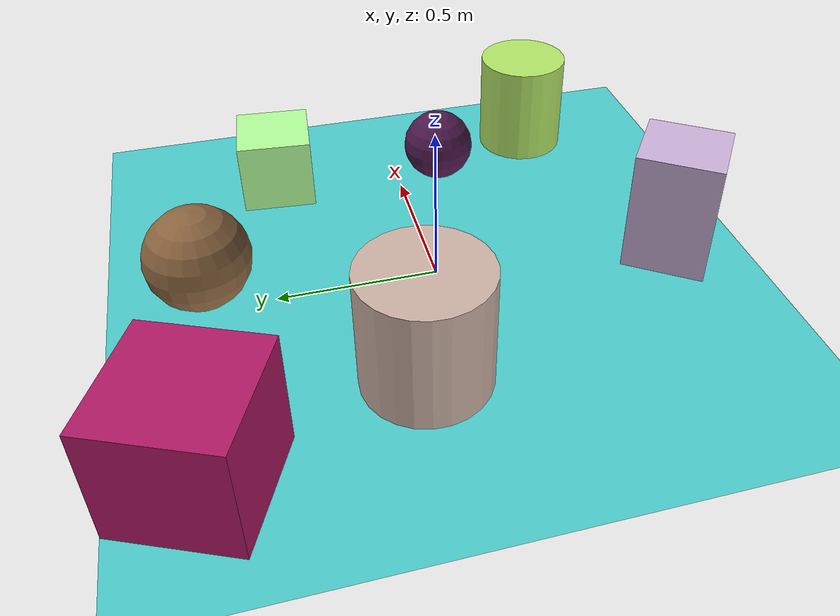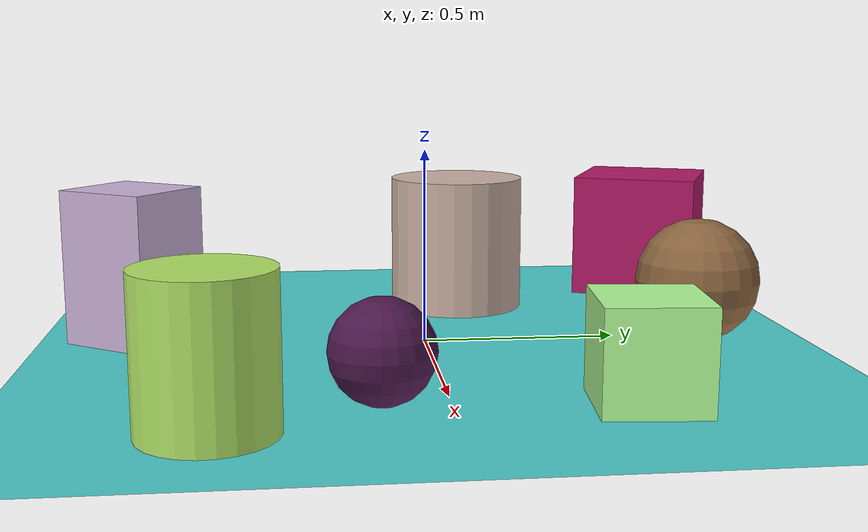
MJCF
<mujoco>
   <asset>
<texture type="skybox" builtin="gradient" rgb1="0.2 0.5 0.7" rgb2="0.3 0.0 0.1" width="256" height="256"/>
<texture name="gradient_0" builtin="gradient" rgb1="0.7 0.4 0.0" rgb2="0.4 0.4 0.5" width="200" height="200"/>
<texture name="gradient_1" builtin="gradient" rgb1="0.9 1.0 0.6" rgb2="0.7 0.4 0.7" width="200" height="200"/>
<texture name="flat_2" builtin="flat" rgb1="0.3 0.1 0.3" rgb2="0.3 0.1 0.3"  width="200" height="200"/>
<texture name="checker_3" builtin="checker" rgb1="0.6 0.1 0.3" rgb2="0.8 0.1 0.5" width="200" height="200"/>
<texture name="flat_4" builtin="flat" rgb1="0.7 1.0 0.6" rgb2="0.7 1.0 0.6"  width="200" height="200"/>
<texture name="flat_5" builtin="flat" rgb1="0.7 0.9 0.4" rgb2="0.7 0.9 0.4"  width="200" height="200"/>
<texture name="gradient_6" builtin="gradient" rgb1="0.7 0.8 0.8" rgb2="0.9 0.6 0.9" width="200" height="200"/><material name="gradient_0_mat" reflectance="0" texture="gradient_0" texuniform="true"/>
<material name="gradient_1_mat" reflectance="0" texture="gradient_1" texuniform="true"/>
<material name="flat_2_mat" reflectance="0" texture="flat_2" texuniform="true"/>
<material name="checker_3_mat" reflectance="0" texrepeat="5 5" texture="checker_3" texuniform="false" />
<material name="flat_4_mat" reflectance="0" texture="flat_4" texuniform="true"/>
<material name="flat_5_mat" reflectance="0" texture="flat_5" texuniform="true"/>
<material name="gradient_6_mat" reflectance="0" texture="gradient_6" texuniform="true"/>
   </asset>

   <worldbody>
      <light diffuse=".9 .9 .9" pos="0 0 3" dir="0 0 -1"/>
     <geom type="plane" size="1 1 0.1" rgba="0.3 0.8 0.8 1"/>
<geom type="sphere" pos="0.06 0.71 0.16" size="0.16 0.16 0.16" material="gradient_0_mat" euler="0 0 4" />
<geom type="cylinder" pos="-0.43 0.14 0.19" size="0.19 0.19 0.19" material="gradient_1_mat" euler="0 0 36" />
<geom type="sphere" pos="0.55 -0.15 0.12" size="0.12 0.12 0.12" material="flat_2_mat" euler="0 0 66" />
<geom type="box" pos="-0.64 0.76 0.18" size="0.18 0.18 0.18" material="checker_3_mat" euler="0 0 66" />
<geom type="box" pos="0.6 0.42 0.12" size="0.12 0.12 0.12" material="flat_4_mat" euler="0 0 85" />
<geom type="cylinder" pos="0.7 -0.51 0.17" size="0.15 0.17 0.17" material="flat_5_mat" euler="0 0 10" />
<geom type="box" pos="-0.09 -0.75 0.2" size="0.13 0.12 0.2" material="gradient_6_mat" euler="0 0 55" /><camera euler="60 0 180" fovy="60" name="camera1" pos="-0.2 -1.5 1"></camera>   </worldbody>
</mujoco>
